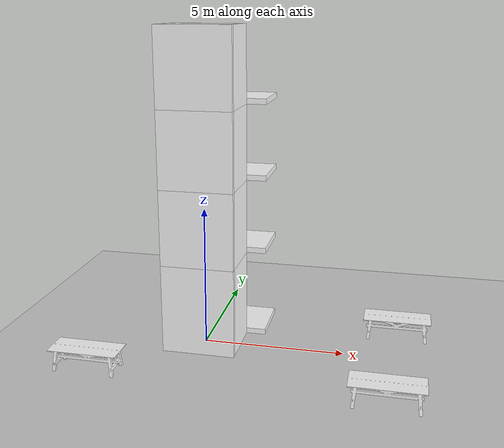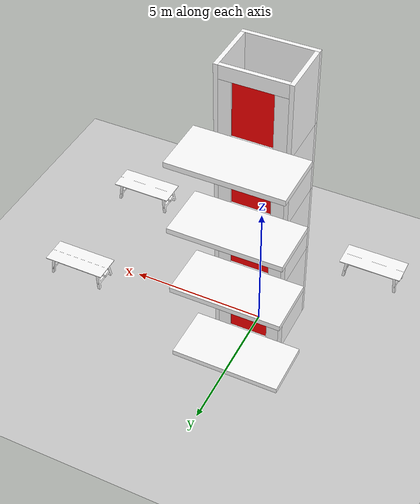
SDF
<?xml version="1.0" encoding="UTF-8"?>
<sdf version="1.9">
  <world name="default">
    <physics type="ode">
      <max_step_size>0.004</max_step_size>
      <real_time_factor>1.0</real_time_factor>
      <real_time_update_rate>250</real_time_update_rate>
    </physics>
    <gravity>0 0 -9.8</gravity>
    <magnetic_field>6e-06 2.3e-05 -4.2e-05</magnetic_field>
    <atmosphere type="adiabatic"/>
    <scene>
      <grid>false</grid>
      <ambient>0.4 0.4 0.4 1</ambient>
      <background>0.7 0.7 0.7 1</background>
      <shadows>true</shadows>
    </scene>
    <model name="ground_plane">
      <static>true</static>
      <link name="link">
        <collision name="collision">
          <geometry>
            <plane>
              <normal>0 0 1</normal>
              <size>1 1</size>
            </plane>
          </geometry>
          <surface>
            <friction>
              <ode/>
            </friction>
            <bounce/>
            <contact/>
          </surface>
        </collision>
        <visual name="visual">
          <geometry>
            <plane>
              <normal>0 0 1</normal>
              <size>500 500</size>
            </plane>
          </geometry>
          <material>
            <ambient>0.8 0.8 0.8 1</ambient>
            <diffuse>0.8 0.8 0.8 1</diffuse>
            <specular>0.8 0.8 0.8 1</specular>
          </material>
        </visual>
        <pose>0 0 0 0 -0 0</pose>
        <inertial>
          <pose>0 0 0 0 -0 0</pose>
          <mass>1</mass>
          <inertia>
            <ixx>1</ixx>
            <ixy>0</ixy>
            <ixz>0</ixz>
            <iyy>1</iyy>
            <iyz>0</iyz>
            <izz>1</izz>
          </inertia>
        </inertial>
        <enable_wind>false</enable_wind>
      </link>
      <pose>0 0 0 0 -0 0</pose>
      <self_collide>false</self_collide>
    </model>
    <light name="sunUTC" type="directional">
      <pose>0 0 500 0 -0 0</pose>
      <cast_shadows>true</cast_shadows>
      <intensity>1</intensity>
      <direction>0.001 0.625 -0.78</direction>
      <diffuse>0.904 0.904 0.904 1</diffuse>
      <specular>0.271 0.271 0.271 1</specular>
      <attenuation>
        <range>2000</range>
        <linear>0</linear>
        <constant>1</constant>
        <quadratic>0</quadratic>
      </attenuation>
      <spot>
        <inner_angle>0</inner_angle>
        <outer_angle>0</outer_angle>
        <falloff>0</falloff>
      </spot>
    </light>
    <spherical_coordinates>
      <surface_model>EARTH_WGS84</surface_model>
      <world_frame_orientation>ENU</world_frame_orientation>
      <latitude_deg>47.397971057728974</latitude_deg>
      <longitude_deg> 8.546163739800146</longitude_deg>
      <elevation>0</elevation>
    </spherical_coordinates>

     <include>
      <uri>model://Dining Table</uri>
      <pose degrees="true">6.8 1.165 0.3379 0 0 90</pose>
    </include>

    <include>
      <uri>model://elevator</uri>
      <pose degrees="true">0 0 0.195 0 0 90</pose>
    </include>

    <include>
      <uri>model://Dining Table_1</uri>
      <pose degrees="true"> 6.6066 -3.5975 0.3379 0 0 90</pose>
    </include>

     <include>
      <uri>model://Dining Table_2</uri>
      <pose degrees="true">-3.0939 -3.4226 0.3379 0 0 90</pose>
    </include>

  </world>
</sdf>

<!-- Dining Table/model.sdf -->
<sdf version="1.6">
  <model name="DiningTable">
    <static>true</static>
    <link name="base_link">
      <visual name="visual_wood">
        <geometry>
          <mesh>
            <scale>1 1 1</scale>
            <uri>meshes/diningtable.dae</uri>
            <submesh>
              <name>Wood</name>
              <center>false</center>
            </submesh>
          </mesh>
        </geometry>
        <material>
          <diffuse>1.0 1.0 1.0</diffuse>
          <specular>1.0 1.0 1.0</specular>
          <pbr>
            <metal>
              <albedo_map>materials/textures/Wood_Albedo.png</albedo_map>
              <normal_map>materials/textures/Wood_Normal.png</normal_map>
              <roughness_map>materials/textures/Wood_Roughness.png</roughness_map>
            </metal>
          </pbr>
        </material>
      </visual>
      <visual name="visual_black">
        <geometry>
          <mesh>
            <scale>1 1 1</scale>
            <uri>meshes/diningtable.dae</uri>
            <submesh>
              <name>Black</name>
              <center>false</center>
            </submesh>
          </mesh>
        </geometry>
        <material>
          <diffuse>0.1 0.1 0.1</diffuse>
          <specular>1.0 1.0 1.0</specular>
          <pbr>
            <metal>
              <roughness>0.5</roughness>
            </metal>
          </pbr>
        </material>
      </visual>
      <collision name="Box011">
        <pose>0.0 0.302465 0.49338 -1.25664 0.0 0.0</pose>
        <geometry>
          <box>
            <size>0.058 0.091 1.10422</size>
          </box>
        </geometry>
      </collision>
      <collision name="Box010">
        <pose>0.0 -0.302465 0.49338 1.25664 0.0 0.0</pose>
        <geometry>
          <box>
            <size>0.058 0.091 1.10422</size>
          </box>
        </geometry>
      </collision>
      <collision name="Box009">
        <pose>-0.361336 -0.961929 0.36405 -0.10472 0.10472 -0.010472</pose>
        <geometry>
          <box>
            <size>0.1 0.1 0.736144</size>
          </box>
        </geometry>
      </collision>
      <collision name="Box008">
        <pose>0.361336 -0.961929 0.36405 -0.10472 -0.10472 0.010472</pose>
        <geometry>
          <box>
            <size>0.1 0.1 0.736144</size>
          </box>
        </geometry>
      </collision>
      <collision name="Box007">
        <pose>0.361336 0.961929 0.36405 0.10472 -0.10472 -0.010472</pose>
        <geometry>
          <box>
            <size>0.1 0.1 0.736144</size>
          </box>
        </geometry>
      </collision>
      <collision name="Box006">
        <pose>-0.361336 0.961929 0.36405 0.10472 0.10472 0.010472</pose>
        <geometry>
          <box>
            <size>0.1 0.1 0.736144</size>
          </box>
        </geometry>
      </collision>
      <collision name="Box005">
        <pose>0.0 -0.97917 0.236278 0.0 0.0 -1.5708</pose>
        <geometry>
          <box>
            <size>0.084456 0.884815 0.099045</size>
          </box>
        </geometry>
      </collision>
      <collision name="Box004">
        <pose>0.0 0.97917 0.236278 0.0 0.0 -1.5708</pose>
        <geometry>
          <box>
            <size>0.084456 0.884815 0.099045</size>
          </box>
        </geometry>
      </collision>
      <collision name="Box003">
        <pose>0.0 0.0 0.320813 0.0 0.0 0.0</pose>
        <geometry>
          <box>
            <size>0.0612 2.15808 0.1065</size>
          </box>
        </geometry>
      </collision>
      <collision name="Box002">
        <pose>0.0 0.0 0.664356 0.0 0.0 0.0</pose>
        <geometry>
          <box>
            <size>0.68 1.91 0.1065</size>
          </box>
        </geometry>
      </collision>
      <collision name="Box001">
        <pose>0.0 0.0 0.725 0.0 0.0 0.0</pose>
        <geometry>
          <box>
            <size>1.0 2.35 0.03</size>
          </box>
        </geometry>
      </collision>
    </link>
  </model>
</sdf>

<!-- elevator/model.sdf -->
<sdf version="1.6">
  <model name="elevator">
    <pose>0 0 0.2 0 0 0</pose>
    <!-- ========================= START OF WALLS ========================== -->
    <link name="structure">
      <kinematic>true</kinematic>
      <pose>0.0 0.0 0.0 0 0 0</pose>
      <inertial>
        <mass>1000</mass>
        <inertia>
          <ixx>10974.166666666666</ixx>
          <ixy>0</ixy>
          <ixz>0</ixz>
          <iyy>10854.166666666666</iyy>
          <iyz>0</iyz>
          <izz>546.6666666666667</izz>
        </inertia>
        <pose>0 0 3.2 0 0 0</pose>
      </inertial>
      <visual name="wall_front_bottom_visual_0">
        <pose>0.875 0.0 -0.1 0 0 0</pose>
        <geometry>
          <box>
            <size>0.15 2.3 0.2</size>
          </box>
        </geometry>
        <material>
          <ambient>1.0 1.0 1.0 1</ambient>
          <diffuse>1.0 1.0 1.0 1</diffuse>
          <specular>0.1 0.1 0.1 1</specular>
        </material>
      </visual>
      <collision name="wall_front_bottom_collision_0">
        <pose>0.875 0.0 -0.1 0 0 0</pose>
        <geometry>
          <box>
            <size>0.15 2.3 0.2</size>
          </box>
        </geometry>
      </collision>
      <visual name="wall_front_top_visual_0">
        <pose>0.875 0.0 2.5 0 0 0</pose>
        <geometry>
          <box>
            <size>0.15 2.3 1.0</size>
          </box>
        </geometry>
        <material>
          <ambient>1.0 1.0 1.0 1</ambient>
          <diffuse>1.0 1.0 1.0 1</diffuse>
          <specular>0.1 0.1 0.1 1</specular>
        </material>
      </visual>
      <collision name="wall_front_top_collision_0">
        <pose>0.875 0.0 2.5 0 0 0</pose>
        <geometry>
          <box>
            <size>0.15 2.3 1.0</size>
          </box>
        </geometry>
      </collision>
      <visual name="wall_front_right_visual_0">
        <pose>0.875 -0.925 1.0 0 0 0</pose>
        <geometry>
          <box>
            <size>0.15 0.45 2.0</size>
          </box>
        </geometry>
        <material>
          <ambient>1.0 1.0 1.0 1</ambient>
          <diffuse>1.0 1.0 1.0 1</diffuse>
          <specular>0.1 0.1 0.1 1</specular>
        </material>
      </visual>
      <collision name="wall_front_right_collision_0">
        <pose>0.875 -0.925 1.0 0 0 0</pose>
        <geometry>
          <box>
            <size>0.15 0.45 2.0</size>
          </box>
        </geometry>
      </collision>
      <visual name="wall_front_left_visual_0">
        <pose>0.875 0.925 1.0 0 0 0</pose>
        <geometry>
          <box>
            <size>0.15 0.45 2.0</size>
          </box>
        </geometry>
        <material>
          <ambient>1.0 1.0 1.0 1</ambient>
          <diffuse>1.0 1.0 1.0 1</diffuse>
          <specular>0.1 0.1 0.1 1</specular>
        </material>
      </visual>
      <collision name="wall_front_left_collision_0">
        <pose>0.875 0.925 1.0 0 0 0</pose>
        <geometry>
          <box>
            <size>0.15 0.45 2.0</size>
          </box>
        </geometry>
      </collision>
      <visual name="wall_right_visual_0">
        <pose>0.0 -1.225 1.4 0 0 0</pose>
        <geometry>
          <box>
            <size>1.9 0.15 3.2</size>
          </box>
        </geometry>
        <material>
          <ambient>1.0 1.0 1.0 1</ambient>
          <diffuse>1.0 1.0 1.0 1</diffuse>
          <specular>0.1 0.1 0.1 1</specular>
        </material>
      </visual>
      <collision name="wall_right_collision_0">
        <pose>0.0 -1.225 1.4 0 0 0</pose>
        <geometry>
          <box>
            <size>1.9 0.15 3.2</size>
          </box>
        </geometry>
      </collision>
      <visual name="wall_left_visual_0">
        <pose>0.0 1.225 1.4 0 0 0</pose>
        <geometry>
          <box>
            <size>1.9 0.15 3.2</size>
          </box>
        </geometry>
        <material>
          <ambient>1.0 1.0 1.0 1</ambient>
          <diffuse>1.0 1.0 1.0 1</diffuse>
          <specular>0.1 0.1 0.1 1</specular>
        </material>
      </visual>
      <collision name="wall_left_collision_0">
        <pose>0.0 1.225 1.4 0 0 0</pose>
        <geometry>
          <box>
            <size>1.9 0.15 3.2</size>
          </box>
        </geometry>
      </collision>
      <visual name="wall_rear_visual_0">
        <pose>-1.025 0.0 1.4 0 0 0</pose>
        <geometry>
          <box>
            <size>0.15 2.6 3.2</size>
          </box>
        </geometry>
        <material>
          <ambient>1.0 1.0 1.0 1</ambient>
          <diffuse>1.0 1.0 1.0 1</diffuse>
          <specular>0.1 0.1 0.1 1</specular>
        </material>
      </visual>
      <collision name="wall_rear_collision_0">
        <pose>-1.025 0.0 1.4 0 0 0</pose>
        <geometry>
          <box>
            <size>0.15 2.6 3.2</size>
          </box>
        </geometry>
      </collision>
      <visual name="entrance_visual_0">
        <pose>1.95 0.0 -0.1 0 0 0</pose>
        <geometry>
          <box>
            <size>2.0 4.0 0.2</size>
          </box>
        </geometry>
        <material>
          <ambient>1.0 1.0 1.0 1</ambient>
          <diffuse>1.0 1.0 1.0 1</diffuse>
          <specular>0.1 0.1 0.1 1</specular>
        </material>
      </visual>
      <collision name="entrance_collision_0">
        <pose>1.95 0.0 -0.1 0 0 0</pose>
        <geometry>
          <box>
            <size>2.0 4.0 0.2</size>
          </box>
        </geometry>
      </collision>
      <visual name="wall_front_bottom_visual_1">
        <pose>0.875 0.0 3.1 0 0 0</pose>
        <geometry>
          <box>
            <size>0.15 2.3 0.2</size>
          </box>
        </geometry>
        <material>
          <ambient>1.0 1.0 1.0 1</ambient>
          <diffuse>1.0 1.0 1.0 1</diffuse>
          <specular>0.1 0.1 0.1 1</specular>
        </material>
      </visual>
      <collision name="wall_front_bottom_collision_1">
        <pose>0.875 0.0 3.1 0 0 0</pose>
        <geometry>
          <box>
            <size>0.15 2.3 0.2</size>
          </box>
        </geometry>
      </collision>
      <visual name="wall_front_top_visual_1">
        <pose>0.875 0.0 5.45 0 0 0</pose>
        <geometry>
          <box>
            <size>0.15 2.3 0.5</size>
          </box>
        </geometry>
        <material>
          <ambient>1.0 1.0 1.0 1</ambient>
          <diffuse>1.0 1.0 1.0 1</diffuse>
          <specular>0.1 0.1 0.1 1</specular>
        </material>
      </visual>
      <collision name="wall_front_top_collision_1">
        <pose>0.875 0.0 5.45 0 0 0</pose>
        <geometry>
          <box>
            <size>0.15 2.3 0.5</size>
          </box>
        </geometry>
      </collision>
      <visual name="wall_front_right_visual_1">
        <pose>0.875 -0.925 4.2 0 0 0</pose>
        <geometry>
          <box>
            <size>0.15 0.45 2.0</size>
          </box>
        </geometry>
        <material>
          <ambient>1.0 1.0 1.0 1</ambient>
          <diffuse>1.0 1.0 1.0 1</diffuse>
          <specular>0.1 0.1 0.1 1</specular>
        </material>
      </visual>
      <collision name="wall_front_right_collision_1">
        <pose>0.875 -0.925 4.2 0 0 0</pose>
        <geometry>
          <box>
            <size>0.15 0.45 2.0</size>
          </box>
        </geometry>
      </collision>
      <visual name="wall_front_left_visual_1">
        <pose>0.875 0.925 4.2 0 0 0</pose>
        <geometry>
          <box>
            <size>0.15 0.45 2.0</size>
          </box>
        </geometry>
        <material>
          <ambient>1.0 1.0 1.0 1</ambient>
          <diffuse>1.0 1.0 1.0 1</diffuse>
          <specular>0.1 0.1 0.1 1</specular>
        </material>
      </visual>
      <collision name="wall_front_left_collision_1">
        <pose>0.875 0.925 4.2 0 0 0</pose>
        <geometry>
          <box>
            <size>0.15 0.45 2.0</size>
          </box>
        </geometry>
      </collision>
      <visual name="wall_right_visual_1">
        <pose>0.0 -1.225 4.35 0 0 0</pose>
        <geometry>
          <box>
            <size>1.9 0.15 2.7</size>
          </box>
        </geometry>
        <material>
          <ambient>1.0 1.0 1.0 1</ambient>
          <diffuse>1.0 1.0 1.0 1</diffuse>
          <specular>0.1 0.1 0.1 1</specular>
        </material>
      </visual>
      <collision name="wall_right_collision_1">
        <pose>0.0 -1.225 4.35 0 0 0</pose>
        <geometry>
          <box>
            <size>1.9 0.15 2.7</size>
          </box>
        </geometry>
      </collision>
      <visual name="wall_left_visual_1">
        <pose>0.0 1.225 4.35 0 0 0</pose>
        <geometry>
          <box>
            <size>1.9 0.15 2.7</size>
          </box>
        </geometry>
        <material>
          <ambient>1.0 1.0 1.0 1</ambient>
          <diffuse>1.0 1.0 1.0 1</diffuse>
          <specular>0.1 0.1 0.1 1</specular>
        </material>
      </visual>
      <collision name="wall_left_collision_1">
        <pose>0.0 1.225 4.35 0 0 0</pose>
        <geometry>
          <box>
            <size>1.9 0.15 2.7</size>
          </box>
        </geometry>
      </collision>
      <visual name="wall_rear_visual_1">
        <pose>-1.025 0.0 4.35 0 0 0</pose>
        <geometry>
          <box>
            <size>0.15 2.6 2.7</size>
          </box>
        </geometry>
        <material>
          <ambient>1.0 1.0 1.0 1</ambient>
          <diffuse>1.0 1.0 1.0 1</diffuse>
          <specular>0.1 0.1 0.1 1</specular>
        </material>
      </visual>
      <collision name="wall_rear_collision_1">
        <pose>-1.025 0.0 4.35 0 0 0</pose>
        <geometry>
          <box>
            <size>0.15 2.6 2.7</size>
          </box>
        </geometry>
      </collision>
      <visual name="entrance_visual_1">
        <pose>1.95 0.0 3.1 0 0 0</pose>
        <geometry>
          <box>
            <size>2.0 4.0 0.2</size>
          </box>
        </geometry>
        <material>
          <ambient>1.0 1.0 1.0 1</ambient>
          <diffuse>1.0 1.0 1.0 1</diffuse>
          <specular>0.1 0.1 0.1 1</specular>
        </material>
      </visual>
      <collision name="entrance_collision_1">
        <pose>1.95 0.0 3.1 0 0 0</pose>
        <geometry>
          <box>
            <size>2.0 4.0 0.2</size>
          </box>
        </geometry>
      </collision>
      <visual name="wall_front_bottom_visual_2">
        <pose>0.875 0.0 5.8 0 0 0</pose>
        <geometry>
          <box>
            <size>0.15 2.3 0.2</size>
          </box>
        </geometry>
        <material>
          <ambient>1.0 1.0 1.0 1</ambient>
          <diffuse>1.0 1.0 1.0 1</diffuse>
          <specular>0.1 0.1 0.1 1</specular>
        </material>
      </visual>
      <collision name="wall_front_bottom_collision_2">
        <pose>0.875 0.0 5.8 0 0 0</pose>
        <geometry>
          <box>
            <size>0.15 2.3 0.2</size>
          </box>
        </geometry>
      </collision>
      <visual name="wall_front_top_visual_2">
        <pose>0.875 0.0 8.15 0 0 0</pose>
        <geometry>
          <box>
            <size>0.15 2.3 0.5</size>
          </box>
        </geometry>
        <material>
          <ambient>1.0 1.0 1.0 1</ambient>
          <diffuse>1.0 1.0 1.0 1</diffuse>
          <specular>0.1 0.1 0.1 1</specular>
        </material>
      </visual>
      <collision name="wall_front_top_collision_2">
        <pose>0.875 0.0 8.15 0 0 0</pose>
        <geometry>
          <box>
            <size>0.15 2.3 0.5</size>
          </box>
        </geometry>
      </collision>
      <visual name="wall_front_right_visual_2">
        <pose>0.875 -0.925 6.9 0 0 0</pose>
        <geometry>
          <box>
            <size>0.15 0.45 2.0</size>
          </box>
        </geometry>
        <material>
          <ambient>1.0 1.0 1.0 1</ambient>
          <diffuse>1.0 1.0 1.0 1</diffuse>
          <specular>0.1 0.1 0.1 1</specular>
        </material>
      </visual>
      <collision name="wall_front_right_collision_2">
        <pose>0.875 -0.925 6.9 0 0 0</pose>
        <geometry>
          <box>
            <size>0.15 0.45 2.0</size>
          </box>
        </geometry>
      </collision>
      <visual name="wall_front_left_visual_2">
        <pose>0.875 0.925 6.9 0 0 0</pose>
        <geometry>
          <box>
            <size>0.15 0.45 2.0</size>
          </box>
        </geometry>
        <material>
          <ambient>1.0 1.0 1.0 1</ambient>
          <diffuse>1.0 1.0 1.0 1</diffuse>
          <specular>0.1 0.1 0.1 1</specular>
        </material>
      </visual>
      <collision name="wall_front_left_collision_2">
        <pose>0.875 0.925 6.9 0 0 0</pose>
        <geometry>
          <box>
            <size>0.15 0.45 2.0</size>
          </box>
        </geometry>
      </collision>
      <visual name="wall_right_visual_2">
        <pose>0.0 -1.225 7.05 0 0 0</pose>
        <geometry>
          <box>
            <size>1.9 0.15 2.7</size>
          </box>
        </geometry>
        <material>
          <ambient>1.0 1.0 1.0 1</ambient>
          <diffuse>1.0 1.0 1.0 1</diffuse>
          <specular>0.1 0.1 0.1 1</specular>
        </material>
      </visual>
      <collision name="wall_right_collision_2">
        <pose>0.0 -1.225 7.05 0 0 0</pose>
        <geometry>
          <box>
            <size>1.9 0.15 2.7</size>
          </box>
        </geometry>
      </collision>
      <visual name="wall_left_visual_2">
        <pose>0.0 1.225 7.05 0 0 0</pose>
        <geometry>
          <box>
            <size>1.9 0.15 2.7</size>
          </box>
        </geometry>
        <material>
          <ambient>1.0 1.0 1.0 1</ambient>
          <diffuse>1.0 1.0 1.0 1</diffuse>
          <specular>0.1 0.1 0.1 1</specular>
        </material>
      </visual>
      <collision name="wall_left_collision_2">
        <pose>0.0 1.225 7.05 0 0 0</pose>
        <geometry>
          <box>
            <size>1.9 0.15 2.7</size>
          </box>
        </geometry>
      </collision>
      <visual name="wall_rear_visual_2">
        <pose>-1.025 0.0 7.05 0 0 0</pose>
        <geometry>
          <box>
            <size>0.15 2.6 2.7</size>
          </box>
        </geometry>
        <material>
          <ambient>1.0 1.0 1.0 1</ambient>
          <diffuse>1.0 1.0 1.0 1</diffuse>
          <specular>0.1 0.1 0.1 1</specular>
        </material>
      </visual>
      <collision name="wall_rear_collision_2">
        <pose>-1.025 0.0 7.05 0 0 0</pose>
        <geometry>
          <box>
            <size>0.15 2.6 2.7</size>
          </box>
        </geometry>
      </collision>
      <visual name="entrance_visual_2">
        <pose>1.95 0.0 5.8 0 0 0</pose>
        <geometry>
          <box>
            <size>2.0 4.0 0.2</size>
          </box>
        </geometry>
        <material>
          <ambient>1.0 1.0 1.0 1</ambient>
          <diffuse>1.0 1.0 1.0 1</diffuse>
          <specular>0.1 0.1 0.1 1</specular>
        </material>
      </visual>
      <collision name="entrance_collision_2">
        <pose>1.95 0.0 5.8 0 0 0</pose>
        <geometry>
          <box>
            <size>2.0 4.0 0.2</size>
          </box>
        </geometry>
      </collision>
      <visual name="wall_front_bottom_visual_3">
        <pose>0.875 0.0 8.5 0 0 0</pose>
        <geometry>
          <box>
            <size>0.15 2.3 0.2</size>
          </box>
        </geometry>
        <material>
          <ambient>1.0 1.0 1.0 1</ambient>
          <diffuse>1.0 1.0 1.0 1</diffuse>
          <specular>0.1 0.1 0.1 1</specular>
        </material>
      </visual>
      <collision name="wall_front_bottom_collision_3">
        <pose>0.875 0.0 8.5 0 0 0</pose>
        <geometry>
          <box>
            <size>0.15 2.3 0.2</size>
          </box>
        </geometry>
      </collision>
      <visual name="wall_front_top_visual_3">
        <pose>0.875 0.0 10.85 0 0 0</pose>
        <geometry>
          <box>
            <size>0.15 2.3 0.5</size>
          </box>
        </geometry>
        <material>
          <ambient>1.0 1.0 1.0 1</ambient>
          <diffuse>1.0 1.0 1.0 1</diffuse>
          <specular>0.1 0.1 0.1 1</specular>
        </material>
      </visual>
      <collision name="wall_front_top_collision_3">
        <pose>0.875 0.0 10.85 0 0 0</pose>
        <geometry>
          <box>
            <size>0.15 2.3 0.5</size>
          </box>
        </geometry>
      </collision>
      <visual name="wall_front_right_visual_3">
        <pose>0.875 -0.925 9.6 0 0 0</pose>
        <geometry>
          <box>
            <size>0.15 0.45 2.0</size>
          </box>
        </geometry>
        <material>
          <ambient>1.0 1.0 1.0 1</ambient>
          <diffuse>1.0 1.0 1.0 1</diffuse>
          <specular>0.1 0.1 0.1 1</specular>
        </material>
      </visual>
      <collision name="wall_front_right_collision_3">
        <pose>0.875 -0.925 9.6 0 0 0</pose>
        <geometry>
          <box>
            <size>0.15 0.45 2.0</size>
          </box>
        </geometry>
      </collision>
      <visual name="wall_front_left_visual_3">
        <pose>0.875 0.925 9.6 0 0 0</pose>
        <geometry>
          <box>
            <size>0.15 0.45 2.0</size>
          </box>
        </geometry>
        <material>
          <ambient>1.0 1.0 1.0 1</ambient>
          <diffuse>1.0 1.0 1.0 1</diffuse>
          <specular>0.1 0.1 0.1 1</specular>
        </material>
      </visual>
      <collision name="wall_front_left_collision_3">
        <pose>0.875 0.925 9.6 0 0 0</pose>
        <geometry>
          <box>
            <size>0.15 0.45 2.0</size>
          </box>
        </geometry>
      </collision>
      <visual name="wall_right_visual_3">
        <pose>0.0 -1.225 9.75 0 0 0</pose>
        <geometry>
          <box>
            <size>1.9 0.15 2.7</size>
          </box>
        </geometry>
        <material>
          <ambient>1.0 1.0 1.0 1</ambient>
          <diffuse>1.0 1.0 1.0 1</diffuse>
          <specular>0.1 0.1 0.1 1</specular>
        </material>
      </visual>
      <collision name="wall_right_collision_3">
        <pose>0.0 -1.225 9.75 0 0 0</pose>
        <geometry>
          <box>
            <size>1.9 0.15 2.7</size>
          </box>
        </geometry>
      </collision>
      <visual name="wall_left_visual_3">
        <pose>0.0 1.225 9.75 0 0 0</pose>
        <geometry>
          <box>
            <size>1.9 0.15 2.7</size>
          </box>
        </geometry>
        <material>
          <ambient>1.0 1.0 1.0 1</ambient>
          <diffuse>1.0 1.0 1.0 1</diffuse>
          <specular>0.1 0.1 0.1 1</specular>
        </material>
      </visual>
      <collision name="wall_left_collision_3">
        <pose>0.0 1.225 9.75 0 0 0</pose>
        <geometry>
          <box>
            <size>1.9 0.15 2.7</size>
          </box>
        </geometry>
      </collision>
      <visual name="wall_rear_visual_3">
        <pose>-1.025 0.0 9.75 0 0 0</pose>
        <geometry>
          <box>
            <size>0.15 2.6 2.7</size>
          </box>
        </geometry>
        <material>
          <ambient>1.0 1.0 1.0 1</ambient>
          <diffuse>1.0 1.0 1.0 1</diffuse>
          <specular>0.1 0.1 0.1 1</specular>
        </material>
      </visual>
      <collision name="wall_rear_collision_3">
        <pose>-1.025 0.0 9.75 0 0 0</pose>
        <geometry>
          <box>
            <size>0.15 2.6 2.7</size>
          </box>
        </geometry>
      </collision>
      <visual name="entrance_visual_3">
        <pose>1.95 0.0 8.5 0 0 0</pose>
        <geometry>
          <box>
            <size>2.0 4.0 0.2</size>
          </box>
        </geometry>
        <material>
          <ambient>1.0 1.0 1.0 1</ambient>
          <diffuse>1.0 1.0 1.0 1</diffuse>
          <specular>0.1 0.1 0.1 1</specular>
        </material>
      </visual>
      <collision name="entrance_collision_3">
        <pose>1.95 0.0 8.5 0 0 0</pose>
        <geometry>
          <box>
            <size>2.0 4.0 0.2</size>
          </box>
        </geometry>
      </collision>
    </link>
    <joint name="foundation" type="fixed">
      <parent>world</parent>
      <child>structure</child>
    </joint>
    <!-- ========================== END OF WALLS =========================== -->
    <!-- ========================= START OF DOORS ========================== -->
    <link name="door_panel_0">
      <pose>0.85 0.0 1.0 0 0 0</pose>
      <inertial>
        <mass>20</mass>
        <inertia>
          <ixx>9.933333333333334</ixx>
          <ixy>0</ixy>
          <ixz>0</ixz>
          <iyy>6.683333333333333</iyy>
          <iyz>0</iyz>
          <izz>3.2833333333333328</izz>
        </inertia>
        <pose>0 0 0 0 0 0</pose>
      </inertial>
      <visual name="door_visual_0">
        <geometry>
          <box>
            <size>0.1 1.4 2.0</size>
          </box>
        </geometry>
        <material>
          <ambient>1.0 0.0 0.0 1</ambient>
          <diffuse>1.0 0.0 0.0 1</diffuse>
          <specular>0.1 0.1 0.1 1</specular>
        </material>
      </visual>
      <collision name="door_collision_0">
        <geometry>
          <box>
            <size>0.1 1.4 2.0</size>
          </box>
        </geometry>
      </collision>
    </link>
    <joint name="door_0" type="prismatic">
      <parent>structure</parent>
      <child>door_panel_0</child>
      <axis>
        <xyz>0 1 0</xyz>
        <limit>
          <lower>0</lower>
          <upper>1.4</upper>
          <effort>5000</effort>
          <velocity>0.1</velocity>
        </limit>
        <dynamics>
          <damping>30</damping>
        </dynamics>
      </axis>
    </joint>
    <plugin filename="gz-sim-joint-position-controller-system" name="ignition::gazebo::systems::JointPositionController">
      <joint_name>door_0</joint_name>
      <p_gain>60</p_gain>
      <i_gain>0</i_gain>
      <d_gain>40</d_gain>
      <cmd_min>-20</cmd_min>
      <cmd_max>20</cmd_max>
    </plugin>
    <link name="door_panel_1">
      <pose>0.85 0.0 4.2 0 0 0</pose>
      <inertial>
        <mass>20</mass>
        <inertia>
          <ixx>9.933333333333334</ixx>
          <ixy>0</ixy>
          <ixz>0</ixz>
          <iyy>6.683333333333333</iyy>
          <iyz>0</iyz>
          <izz>3.2833333333333328</izz>
        </inertia>
        <pose>0 0 0 0 0 0</pose>
      </inertial>
      <visual name="door_visual_1">
        <geometry>
          <box>
            <size>0.1 1.4 2.0</size>
          </box>
        </geometry>
        <material>
          <ambient>1.0 0.0 0.0 1</ambient>
          <diffuse>1.0 0.0 0.0 1</diffuse>
          <specular>0.1 0.1 0.1 1</specular>
        </material>
      </visual>
      <collision name="door_collision_1">
        <geometry>
          <box>
            <size>0.1 1.4 2.0</size>
          </box>
        </geometry>
      </collision>
    </link>
    <joint name="door_1" type="prismatic">
      <parent>structure</parent>
      <child>door_panel_1</child>
      <axis>
        <xyz>0 1 0</xyz>
        <limit>
          <lower>0</lower>
          <upper>1.4</upper>
          <effort>5000</effort>
          <velocity>0.1</velocity>
        </limit>
        <dynamics>
          <damping>30</damping>
        </dynamics>
      </axis>
    </joint>
    <plugin filename="ignition-gazebo-joint-position-controller-system" name="ignition::gazebo::systems::JointPositionController">
      <joint_name>door_1</joint_name>
      <p_gain>60</p_gain>
      <i_gain>0</i_gain>
      <d_gain>40</d_gain>
      <cmd_min>-20</cmd_min>
      <cmd_max>20</cmd_max>
    </plugin>
    <link name="door_panel_2">
      <pose>0.85 0.0 6.9 0 0 0</pose>
      <inertial>
        <mass>20</mass>
        <inertia>
          <ixx>9.933333333333334</ixx>
          <ixy>0</ixy>
          <ixz>0</ixz>
          <iyy>6.683333333333333</iyy>
          <iyz>0</iyz>
          <izz>3.2833333333333328</izz>
        </inertia>
        <pose>0 0 0 0 0 0</pose>
      </inertial>
      <visual name="door_visual_2">
        <geometry>
          <box>
            <size>0.1 1.4 2.0</size>
          </box>
        </geometry>
        <material>
          <ambient>1.0 0.0 0.0 1</ambient>
          <diffuse>1.0 0.0 0.0 1</diffuse>
          <specular>0.1 0.1 0.1 1</specular>
        </material>
      </visual>
      <collision name="door_collision_2">
        <geometry>
          <box>
            <size>0.1 1.4 2.0</size>
          </box>
        </geometry>
      </collision>
    </link>
    <joint name="door_2" type="prismatic">
      <parent>structure</parent>
      <child>door_panel_2</child>
      <axis>
        <xyz>0 1 0</xyz>
        <limit>
          <lower>0</lower>
          <upper>1.4</upper>
          <effort>5000</effort>
          <velocity>0.1</velocity>
        </limit>
        <dynamics>
          <damping>30</damping>
        </dynamics>
      </axis>
    </joint>
    <plugin filename="ignition-gazebo-joint-position-controller-system" name="ignition::gazebo::systems::JointPositionController">
      <joint_name>door_2</joint_name>
      <p_gain>60</p_gain>
      <i_gain>0</i_gain>
      <d_gain>40</d_gain>
      <cmd_min>-20</cmd_min>
      <cmd_max>20</cmd_max>
    </plugin>
    <link name="door_panel_3">
      <pose>0.85 0.0 9.6 0 0 0</pose>
      <inertial>
        <mass>20</mass>
        <inertia>
          <ixx>9.933333333333334</ixx>
          <ixy>0</ixy>
          <ixz>0</ixz>
          <iyy>6.683333333333333</iyy>
          <iyz>0</iyz>
          <izz>3.2833333333333328</izz>
        </inertia>
        <pose>0 0 0 0 0 0</pose>
      </inertial>
      <visual name="door_visual_3">
        <geometry>
          <box>
            <size>0.1 1.4 2.0</size>
          </box>
        </geometry>
        <material>
          <ambient>1.0 0.0 0.0 1</ambient>
          <diffuse>1.0 0.0 0.0 1</diffuse>
          <specular>0.1 0.1 0.1 1</specular>
        </material>
      </visual>
      <collision name="door_collision_3">
        <geometry>
          <box>
            <size>0.1 1.4 2.0</size>
          </box>
        </geometry>
      </collision>
    </link>
    <joint name="door_3" type="prismatic">
      <parent>structure</parent>
      <child>door_panel_3</child>
      <axis>
        <xyz>0 1 0</xyz>
        <limit>
          <lower>0</lower>
          <upper>1.4</upper>
          <effort>5000</effort>
          <velocity>0.1</velocity>
        </limit>
        <dynamics>
          <damping>30</damping>
        </dynamics>
      </axis>
    </joint>
    <plugin filename="ignition-gazebo-joint-position-controller-system" name="ignition::gazebo::systems::JointPositionController">
      <joint_name>door_3</joint_name>
      <p_gain>60</p_gain>
      <i_gain>0</i_gain>
      <d_gain>40</d_gain>
      <cmd_min>-20</cmd_min>
      <cmd_max>20</cmd_max>
    </plugin>
    <!-- ========================== END OF DOORS =========================== -->
    <!-- ========================= START OF CABIN ========================== -->
    <link name="cabin">
      <pose>0.0 0.0 0.0 0 0 0</pose>
      <inertial>
        <mass>200</mass>
        <inertia>
          <ixx>147.33333333333334</ixx>
          <ixy>0</ixy>
          <ixz>0</ixz>
          <iyy>123.33333333333336</iyy>
          <iyz>0</iyz>
          <izz>109.33333333333333</izz>
        </inertia>
        <pose>0 0 1.1 0 0 0</pose>
      </inertial>
      <light type="spot" name="spot_0">
        <pose>0 -0.5 2.09 0 0 0</pose>
        <diffuse>1 1 1 1</diffuse>
        <specular>.2 .2 .2 1</specular>
        <attenuation>
          <range>2.2</range>
          <linear>0.2</linear>
          <constant>0.05</constant>
          <quadratic>0.01</quadratic>
        </attenuation>
        <direction>0 0 1</direction>
        <spot>
          <inner_angle>0.1</inner_angle>
          <outer_angle>1.0</outer_angle>
          <falloff>0.8</falloff>
        </spot>
        <cast_shadows>true</cast_shadows>
      </light>
      <light type="spot" name="spot_1">
        <pose>0 0.5 2.09 0 0 0</pose>
        <diffuse>1 1 1 1</diffuse>
        <specular>.2 .2 .2 1</specular>
        <attenuation>
          <range>2.2</range>
          <linear>0.2</linear>
          <constant>0.05</constant>
          <quadratic>0.01</quadratic>
        </attenuation>
        <direction>0 0 1</direction>
        <spot>
          <inner_angle>0.1</inner_angle>
          <outer_angle>1.0</outer_angle>
          <falloff>0.8</falloff>
        </spot>
        <cast_shadows>true</cast_shadows>
      </light>
      <visual name="cabin_bottom_visual">
        <pose>0 0 -0.05 0 0 0</pose>
        <geometry>
          <box>
            <size>1.6 2.0 0.1</size>
          </box>
        </geometry>
        <material>
          <ambient>0.175 0.175 0.175 1</ambient>
          <diffuse>0.175 0.175 0.175 1</diffuse>
          <specular>0.1 0.1 0.1 1</specular>
        </material>
      </visual>
      <collision name="cabin_bottom_collision">
        <pose>0 0 -0.05 0 0 0</pose>
        <geometry>
          <box>
            <size>1.6 2.0 0.1</size>
          </box>
        </geometry>
      </collision>
      <visual name="cabin_top_visual">
        <pose>0 0 2.25 0 0 0</pose>
        <geometry>
          <box>
            <size>1.6 2.0 0.1</size>
          </box>
        </geometry>
        <material>
          <ambient>0.175 0.175 0.175 1</ambient>
          <diffuse>0.175 0.175 0.175 1</diffuse>
          <specular>0.1 0.1 0.1 1</specular>
        </material>
      </visual>
      <collision name="cabin_top_collision">
        <pose>0 0 2.25 0 0 0</pose>
        <geometry>
          <box>
            <size>1.6 2.0 0.1</size>
          </box>
        </geometry>
      </collision>
      <visual name="cabin_right_visual">
        <pose>0 -1.05 1.1 0 0 0</pose>
        <geometry>
          <box>
            <size>1.6 0.1 2.4</size>
          </box>
        </geometry>
        <material>
          <ambient>0.175 0.175 0.175 1</ambient>
          <diffuse>0.175 0.175 0.175 1</diffuse>
          <specular>0.1 0.1 0.1 1</specular>
        </material>
      </visual>
      <collision name="cabin_right_collision">
        <pose>0 -1.05 1.1 0 0 0</pose>
        <geometry>
          <box>
            <size>1.6 0.1 2.4</size>
          </box>
        </geometry>
      </collision>
      <visual name="cabin_left_visual">
        <pose>0 1.05 1.1 0 0 0</pose>
        <geometry>
          <box>
            <size>1.6 0.1 2.4</size>
          </box>
        </geometry>
        <material>
          <ambient>0.175 0.175 0.175 1</ambient>
          <diffuse>0.175 0.175 0.175 1</diffuse>
          <specular>0.1 0.1 0.1 1</specular>
        </material>
      </visual>
      <collision name="cabin_left_collision">
        <pose>0 1.05 1.1 0 0 0</pose>
        <geometry>
          <box>
            <size>1.6 0.1 2.4</size>
          </box>
        </geometry>
      </collision>
      <visual name="cabin_rear_visual">
        <pose>-0.85 0 1.1 0 0 0</pose>
        <geometry>
          <box>
            <size>0.1 2.2 2.4</size>
          </box>
        </geometry>
        <material>
          <ambient>0.175 0.175 0.175 1</ambient>
          <diffuse>0.175 0.175 0.175 1</diffuse>
          <specular>0.1 0.1 0.1 1</specular>
        </material>
      </visual>
      <collision name="cabin_rear_collision">
        <pose>-0.85 0 1.1 0 0 0</pose>
        <geometry>
          <box>
            <size>0.1 2.2 2.4</size>
          </box>
        </geometry>
      </collision>
    </link>
    <joint name="lift" type="prismatic">
      <parent>structure</parent>
      <child>cabin</child>
      <axis>
        <xyz>0 0 1</xyz>
        <limit>
          <lower>0</lower>
          <upper>8.600000000000001</upper>
          <effort>50000000</effort>
          <velocity>0.5</velocity>
        </limit>
        <dynamics>
          <damping>180000</damping>
        </dynamics>
      </axis>
    </joint>
    <plugin filename="ignition-gazebo-joint-position-controller-system" name="ignition::gazebo::systems::JointPositionController">
      <joint_name>lift</joint_name>
      <p_gain>4000000</p_gain>
      <i_gain>2000</i_gain>
      <d_gain>5000</d_gain>
      <i_min>-2000</i_min>
      <i_max>2000</i_max>
      <cmd_min>-80000</cmd_min>
      <cmd_max>120000</cmd_max>
    </plugin>
    <!-- ========================== END OF CABIN =========================== -->
    <!-- =================== START OF FLOOR REFERENCES ===================== -->
    <link name="floor_0">
      <pose>0.0 0.0 0.0 0 0 0</pose>
    </link>
    <joint name="floor_0_joint" type="fixed">
      <parent>structure</parent>
      <child>floor_0</child>
    </joint>
    <link name="floor_1">
      <pose>0.0 0.0 3.2 0 0 0</pose>
    </link>
    <joint name="floor_1_joint" type="fixed">
      <parent>structure</parent>
      <child>floor_1</child>
    </joint>
    <link name="floor_2">
      <pose>0.0 0.0 5.9 0 0 0</pose>
    </link>
    <joint name="floor_2_joint" type="fixed">
      <parent>structure</parent>
      <child>floor_2</child>
    </joint>
    <link name="floor_3">
      <pose>0.0 0.0 8.6 0 0 0</pose>
    </link>
    <joint name="floor_3_joint" type="fixed">
      <parent>structure</parent>
      <child>floor_3</child>
    </joint>
    <!-- ==================== END OF FLOOR REFERENCES ====================== -->
    <!-- ===================== START OF DOOR LIDARS ======================== -->
    <link name="door_lidar_0">
      <pose>0.875 -0.7 0.2 1.5707963267948966 0 1.5707963267948966</pose>
      <sensor name="sensor" type="gpu_lidar">
        <topic>model/elevator/door_0/lidar</topic>
        <update_rate>10</update_rate>
        <lidar>
          <scan>
            <horizontal>
              <samples>1</samples>
              <resolution>1</resolution>
              <min_angle>0</min_angle>
              <max_angle>0</max_angle>
            </horizontal>
          </scan>
          <range>
            <min>0.001</min>
            <max>1.395</max>
            <resolution>0.01</resolution>
          </range>
        </lidar>
      </sensor>
    </link>
    <joint name="door_lidar_0_joint" type="fixed">
      <parent>structure</parent>
      <child>door_lidar_0</child>
    </joint>
    <link name="door_lidar_1">
      <pose>0.875 -0.7 3.4 1.5707963267948966 0 1.5707963267948966</pose>
      <sensor name="sensor" type="gpu_lidar">
        <topic>model/elevator/door_1/lidar</topic>
        <update_rate>10</update_rate>
        <lidar>
          <scan>
            <horizontal>
              <samples>1</samples>
              <resolution>1</resolution>
              <min_angle>0</min_angle>
              <max_angle>0</max_angle>
            </horizontal>
          </scan>
          <range>
            <min>0.001</min>
            <max>1.395</max>
            <resolution>0.01</resolution>
          </range>
        </lidar>
      </sensor>
    </link>
    <joint name="door_lidar_1_joint" type="fixed">
      <parent>structure</parent>
      <child>door_lidar_1</child>
    </joint>
    <link name="door_lidar_2">
      <pose>0.875 -0.7 6.1 1.5707963267948966 0 1.5707963267948966</pose>
      <sensor name="sensor" type="gpu_lidar">
        <topic>model/elevator/door_2/lidar</topic>
        <update_rate>10</update_rate>
        <lidar>
          <scan>
            <horizontal>
              <samples>1</samples>
              <resolution>1</resolution>
              <min_angle>0</min_angle>
              <max_angle>0</max_angle>
            </horizontal>
          </scan>
          <range>
            <min>0.001</min>
            <max>1.395</max>
            <resolution>0.01</resolution>
          </range>
        </lidar>
      </sensor>
    </link>
    <joint name="door_lidar_2_joint" type="fixed">
      <parent>structure</parent>
      <child>door_lidar_2</child>
    </joint>
    <link name="door_lidar_3">
      <pose>0.875 -0.7 8.8 1.5707963267948966 0 1.5707963267948966</pose>
      <sensor name="sensor" type="gpu_lidar">
        <topic>model/elevator/door_3/lidar</topic>
        <update_rate>10</update_rate>
        <lidar>
          <scan>
            <horizontal>
              <samples>1</samples>
              <resolution>1</resolution>
              <min_angle>0</min_angle>
              <max_angle>0</max_angle>
            </horizontal>
          </scan>
          <range>
            <min>0.001</min>
            <max>1.395</max>
            <resolution>0.01</resolution>
          </range>
        </lidar>
      </sensor>
    </link>
    <joint name="door_lidar_3_joint" type="fixed">
      <parent>structure</parent>
      <child>door_lidar_3</child>
    </joint>
    <!-- ====================== END OF DOOR LIDARS ========================= -->
    <!-- ====================== START OF CONTROLLER ======================== -->
    <plugin filename="ignition-gazebo-elevator-system" name="ignition::gazebo::systems::Elevator">
    </plugin>
    <!-- ======================= END OF CONTROLLER ========================= -->
  </model>
</sdf>

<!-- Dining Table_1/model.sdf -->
<sdf version="1.6">
  <model name="DiningTable_!">
    <static>true</static>
    <link name="base_link">
      <visual name="visual_wood">
        <geometry>
          <mesh>
            <scale>1 1 1</scale>
            <uri>meshes/diningtable.dae</uri>
            <submesh>
              <name>Wood</name>
              <center>false</center>
            </submesh>
          </mesh>
        </geometry>
        <material>
          <diffuse>1.0 1.0 1.0</diffuse>
          <specular>1.0 1.0 1.0</specular>
          <pbr>
            <metal>
              <albedo_map>materials/textures/Wood_Albedo.png</albedo_map>
              <normal_map>materials/textures/Wood_Normal.png</normal_map>
              <roughness_map>materials/textures/Wood_Roughness.png</roughness_map>
            </metal>
          </pbr>
        </material>
      </visual>
      <visual name="visual_black">
        <geometry>
          <mesh>
            <scale>1 1 1</scale>
            <uri>meshes/diningtable.dae</uri>
            <submesh>
              <name>Black</name>
              <center>false</center>
            </submesh>
          </mesh>
        </geometry>
        <material>
          <diffuse>0.1 0.1 0.1</diffuse>
          <specular>1.0 1.0 1.0</specular>
          <pbr>
            <metal>
              <roughness>0.5</roughness>
            </metal>
          </pbr>
        </material>
      </visual>
      <collision name="Box011">
        <pose>0.0 0.302465 0.49338 -1.25664 0.0 0.0</pose>
        <geometry>
          <box>
            <size>0.058 0.091 1.10422</size>
          </box>
        </geometry>
      </collision>
      <collision name="Box010">
        <pose>0.0 -0.302465 0.49338 1.25664 0.0 0.0</pose>
        <geometry>
          <box>
            <size>0.058 0.091 1.10422</size>
          </box>
        </geometry>
      </collision>
      <collision name="Box009">
        <pose>-0.361336 -0.961929 0.36405 -0.10472 0.10472 -0.010472</pose>
        <geometry>
          <box>
            <size>0.1 0.1 0.736144</size>
          </box>
        </geometry>
      </collision>
      <collision name="Box008">
        <pose>0.361336 -0.961929 0.36405 -0.10472 -0.10472 0.010472</pose>
        <geometry>
          <box>
            <size>0.1 0.1 0.736144</size>
          </box>
        </geometry>
      </collision>
      <collision name="Box007">
        <pose>0.361336 0.961929 0.36405 0.10472 -0.10472 -0.010472</pose>
        <geometry>
          <box>
            <size>0.1 0.1 0.736144</size>
          </box>
        </geometry>
      </collision>
      <collision name="Box006">
        <pose>-0.361336 0.961929 0.36405 0.10472 0.10472 0.010472</pose>
        <geometry>
          <box>
            <size>0.1 0.1 0.736144</size>
          </box>
        </geometry>
      </collision>
      <collision name="Box005">
        <pose>0.0 -0.97917 0.236278 0.0 0.0 -1.5708</pose>
        <geometry>
          <box>
            <size>0.084456 0.884815 0.099045</size>
          </box>
        </geometry>
      </collision>
      <collision name="Box004">
        <pose>0.0 0.97917 0.236278 0.0 0.0 -1.5708</pose>
        <geometry>
          <box>
            <size>0.084456 0.884815 0.099045</size>
          </box>
        </geometry>
      </collision>
      <collision name="Box003">
        <pose>0.0 0.0 0.320813 0.0 0.0 0.0</pose>
        <geometry>
          <box>
            <size>0.0612 2.15808 0.1065</size>
          </box>
        </geometry>
      </collision>
      <collision name="Box002">
        <pose>0.0 0.0 0.664356 0.0 0.0 0.0</pose>
        <geometry>
          <box>
            <size>0.68 1.91 0.1065</size>
          </box>
        </geometry>
      </collision>
      <collision name="Box001">
        <pose>0.0 0.0 0.725 0.0 0.0 0.0</pose>
        <geometry>
          <box>
            <size>1.0 2.35 0.03</size>
          </box>
        </geometry>
      </collision>
    </link>
  </model>
</sdf>

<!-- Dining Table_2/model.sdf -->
<sdf version="1.6">
  <model name="DiningTable_2">
    <static>true</static>
    <link name="base_link">
      <visual name="visual_wood">
        <geometry>
          <mesh>
            <scale>1 1 1</scale>
            <uri>meshes/diningtable.dae</uri>
            <submesh>
              <name>Wood</name>
              <center>false</center>
            </submesh>
          </mesh>
        </geometry>
        <material>
          <diffuse>1.0 1.0 1.0</diffuse>
          <specular>1.0 1.0 1.0</specular>
          <pbr>
            <metal>
              <albedo_map>materials/textures/Wood_Albedo.png</albedo_map>
              <normal_map>materials/textures/Wood_Normal.png</normal_map>
              <roughness_map>materials/textures/Wood_Roughness.png</roughness_map>
            </metal>
          </pbr>
        </material>
      </visual>
      <visual name="visual_black">
        <geometry>
          <mesh>
            <scale>1 1 1</scale>
            <uri>meshes/diningtable.dae</uri>
            <submesh>
              <name>Black</name>
              <center>false</center>
            </submesh>
          </mesh>
        </geometry>
        <material>
          <diffuse>0.1 0.1 0.1</diffuse>
          <specular>1.0 1.0 1.0</specular>
          <pbr>
            <metal>
              <roughness>0.5</roughness>
            </metal>
          </pbr>
        </material>
      </visual>
      <collision name="Box011">
        <pose>0.0 0.302465 0.49338 -1.25664 0.0 0.0</pose>
        <geometry>
          <box>
            <size>0.058 0.091 1.10422</size>
          </box>
        </geometry>
      </collision>
      <collision name="Box010">
        <pose>0.0 -0.302465 0.49338 1.25664 0.0 0.0</pose>
        <geometry>
          <box>
            <size>0.058 0.091 1.10422</size>
          </box>
        </geometry>
      </collision>
      <collision name="Box009">
        <pose>-0.361336 -0.961929 0.36405 -0.10472 0.10472 -0.010472</pose>
        <geometry>
          <box>
            <size>0.1 0.1 0.736144</size>
          </box>
        </geometry>
      </collision>
      <collision name="Box008">
        <pose>0.361336 -0.961929 0.36405 -0.10472 -0.10472 0.010472</pose>
        <geometry>
          <box>
            <size>0.1 0.1 0.736144</size>
          </box>
        </geometry>
      </collision>
      <collision name="Box007">
        <pose>0.361336 0.961929 0.36405 0.10472 -0.10472 -0.010472</pose>
        <geometry>
          <box>
            <size>0.1 0.1 0.736144</size>
          </box>
        </geometry>
      </collision>
      <collision name="Box006">
        <pose>-0.361336 0.961929 0.36405 0.10472 0.10472 0.010472</pose>
        <geometry>
          <box>
            <size>0.1 0.1 0.736144</size>
          </box>
        </geometry>
      </collision>
      <collision name="Box005">
        <pose>0.0 -0.97917 0.236278 0.0 0.0 -1.5708</pose>
        <geometry>
          <box>
            <size>0.084456 0.884815 0.099045</size>
          </box>
        </geometry>
      </collision>
      <collision name="Box004">
        <pose>0.0 0.97917 0.236278 0.0 0.0 -1.5708</pose>
        <geometry>
          <box>
            <size>0.084456 0.884815 0.099045</size>
          </box>
        </geometry>
      </collision>
      <collision name="Box003">
        <pose>0.0 0.0 0.320813 0.0 0.0 0.0</pose>
        <geometry>
          <box>
            <size>0.0612 2.15808 0.1065</size>
          </box>
        </geometry>
      </collision>
      <collision name="Box002">
        <pose>0.0 0.0 0.664356 0.0 0.0 0.0</pose>
        <geometry>
          <box>
            <size>0.68 1.91 0.1065</size>
          </box>
        </geometry>
      </collision>
      <collision name="Box001">
        <pose>0.0 0.0 0.725 0.0 0.0 0.0</pose>
        <geometry>
          <box>
            <size>1.0 2.35 0.03</size>
          </box>
        </geometry>
      </collision>
    </link>
  </model>
</sdf>
